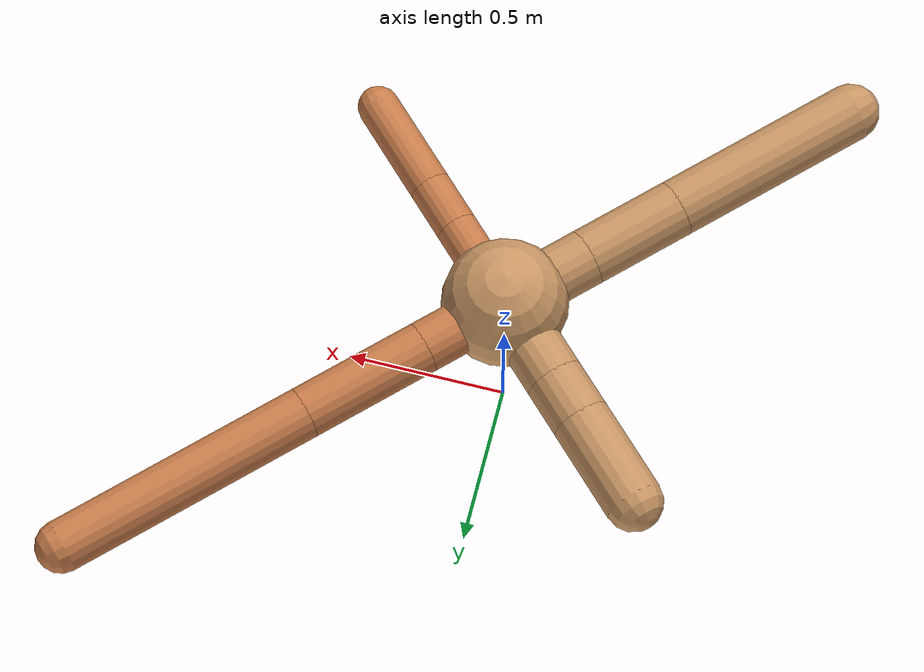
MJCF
<?xml version="1.0" ?>
<mujoco model="ant">

	<compiler angle="degree" coordinate="local" inertiafromgeom="true"/>

	<option integrator="RK4" timestep="0.01"/>

	<custom>

		<numeric data="0.0 0.0 0.55 1.0 0.0 0.0 0.0 0.0 1.0 0.0 -1.0 0.0 -1.0 0.0 1.0" name="init_qpos"/>

	</custom>

	<default>

		<joint armature="1" damping="1" limited="true"/>

		<geom conaffinity="0" condim="3" density="5.0" friction="1.5 0.1 0.1" margin="0.01" rgba="0.8 0.6 0.4 1"/>

	</default>

	<worldbody>

		<body name="torso" pos="0 0 0.75">

			<geom name="torso_geom" pos="0 0 0" size="0.19190765570546256" type="sphere"/>

			<!--joint armature="0" damping="0" limited="false" margin="0.01" name="root" pos="0 0 0" type="free"/-->

			<body name="front_left_leg" pos="0 0 0">

				<geom fromto="0 0 0 0.2 0.2 0" name="aux_1_geom" size="0.07925060231192683" type="capsule" rgba=".8 .5 .3 1"/>

				<body name="aux_1" pos="0.2 0.2 0">

					<joint axis="0 0 1" name="hip_1" pos="0.0 0.0 0.0" range="-40 40" type="hinge"/>

					<geom fromto="0 0 0 0.28550627450936333 0.28550627450936333 0" name="left_leg_geom" size="0.07925060231192683" type="capsule" rgba=".8 .5 .3 1"/>

					<body pos="0.28550627450936333 0.28550627450936333 0" name="front_left_foot">

						<joint axis="-1 1 0" name="ankle_1" pos="0.0 0.0 0.0" range="30 100" type="hinge"/>

						<geom fromto="0 0 0 0.5710125490187267 0.5710125490187267 0" name="left_ankle_geom" size="0.07925060231192683" type="capsule" rgba=".8 .5 .3 1"/>

					</body>

				</body>

			</body>

			<body name="front_right_leg" pos="0 0 0">

				<geom fromto="0 0 0 -0.2 0.2 0" name="aux_2_geom" size="0.08883752490170227" type="capsule"/>

				<body name="aux_2" pos="-0.2 0.2 0">

					<joint axis="0 0 1" name="hip_2" pos="0.0 0.0 0.0" range="-40 40" type="hinge"/>

					<geom fromto="0 0 0 -0.105056406041528 0.105056406041528 0" name="right_leg_geom" size="0.08883752490170227" type="capsule"/>

					<body pos="-0.105056406041528 0.105056406041528 0" name="front_right_foot">

						<joint axis="1 1 0" name="ankle_2" pos="0.0 0.0 0.0" range="-100 -30" type="hinge"/>

						<geom fromto="0 0 0 -0.210112812083056 0.210112812083056 0" name="right_ankle_geom" size="0.08883752490170227" type="capsule"/>

					</body>

				</body>

			</body>

			<body name="left_back_leg" pos="0 0 0">

				<geom fromto="0 0 0 -0.2 -0.2 0" name="aux_3_geom" size="0.08856010362848996" type="capsule"/>

				<body name="aux_3" pos="-0.2 -0.2 0">

					<joint axis="0 0 1" name="hip_3" pos="0.0 0.0 0.0" range="-40 40" type="hinge"/>

					<geom fromto="0 0 0 -0.22126670639219023 -0.22126670639219023 0" name="back_leg_geom" size="0.08856010362848996" type="capsule"/>

					<body pos="-0.22126670639219023 -0.22126670639219023 0" name="left_back_foot">

						<joint axis="-1 1 0" name="ankle_3" pos="0.0 0.0 0.0" range="-100 -30" type="hinge"/>

						<geom fromto="0 0 0 -0.44253341278438046 -0.44253341278438046 0" name="third_ankle_geom" size="0.08856010362848996" type="capsule"/>

					</body>

				</body>

			</body>

			<body name="right_back_leg" pos="0 0 0">

				<geom fromto="0 0 0 0.2 -0.2 0" name="aux_4_geom" size="0.06350734773599664" type="capsule" rgba=".8 .5 .3 1"/>

				<body name="aux_4" pos="0.2 -0.2 0">

					<joint axis="0 0 1" name="hip_4" pos="0.0 0.0 0.0" range="-40 40" type="hinge"/>

					<geom fromto="0 0 0 0.1095112313390671 -0.1095112313390671 0" name="rightback_leg_geom" size="0.06350734773599664" type="capsule" rgba=".8 .5 .3 1"/>

					<body pos="0.1095112313390671 -0.1095112313390671 0" name="right_back_foot">

						<joint axis="1 1 0" name="ankle_4" pos="0.0 0.0 0.0" range="30 100" type="hinge"/>

						<geom fromto="0 0 0 0.2190224626781342 -0.2190224626781342 0" name="fourth_ankle_geom" size="0.06350734773599664" type="capsule" rgba=".8 .5 .3 1"/>

					</body>

				</body>

			</body>

		</body>

	</worldbody>

	<actuator>

		<motor ctrllimited="true" ctrlrange="-1.0 1.0" joint="hip_4" gear="150"/>

		<motor ctrllimited="true" ctrlrange="-1.0 1.0" joint="ankle_4" gear="150"/>

		<motor ctrllimited="true" ctrlrange="-1.0 1.0" joint="hip_1" gear="150"/>

		<motor ctrllimited="true" ctrlrange="-1.0 1.0" joint="ankle_1" gear="150"/>

		<motor ctrllimited="true" ctrlrange="-1.0 1.0" joint="hip_2" gear="150"/>

		<motor ctrllimited="true" ctrlrange="-1.0 1.0" joint="ankle_2" gear="150"/>

		<motor ctrllimited="true" ctrlrange="-1.0 1.0" joint="hip_3" gear="150"/>

		<motor ctrllimited="true" ctrlrange="-1.0 1.0" joint="ankle_3" gear="150"/>

	</actuator>

</mujoco>
